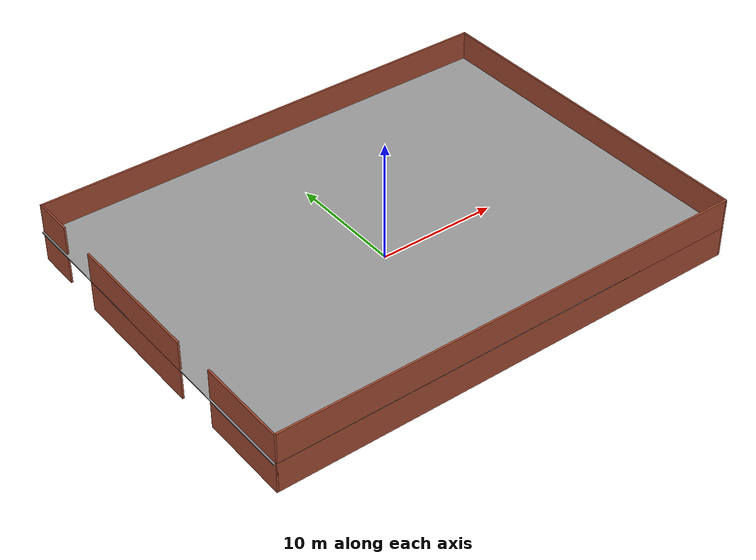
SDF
<?xml version='1.0'?>
<sdf version='1.6'>
  <model name='wallAndRoof'>
    <pose frame=''>-0.107713 0.045141 0 0 -0 0</pose>
    <link name='Floor_2'>
      <collision name='Floor_2_Collision'>
        <geometry>
          <box>
            <size>39.8884 29.75 0.1</size>
          </box>
        </geometry>
        <pose frame=''>0 0 0.05 0 -0 0</pose>
      </collision>
      <visual name='Floor_2_Visual'>
        <pose frame=''>0 0 0.05 0 -0 0</pose>
        <geometry>
          <box>
            <size>39.8884 29.75 0.1</size>
          </box>
        </geometry>
        <material>
          <script>
            <uri>file://media/materials/scripts/gazebo.material</uri>
            <name>Gazebo/Grey</name>
          </script>
          <ambient>0.32549 0.32549 0.32549 1</ambient>
        </material>
      </visual>
      <pose frame=''>-1e-06 0 2.5 0 -0 0</pose>
    </link>
    <link name='Wall_11'>
      <collision name='Wall_11_Collision'>
        <geometry>
          <box>
            <size>7.5 0.15 2.5</size>
          </box>
        </geometry>
        <pose frame=''>0 0 1.25 0 -0 0</pose>
      </collision>
      <visual name='Wall_11_Visual'>
        <pose frame=''>0 0 1.25 0 -0 0</pose>
        <geometry>
          <box>
            <size>7.5 0.15 2.5</size>
          </box>
        </geometry>
        <material>
          <script>
            <uri>file://media/materials/scripts/gazebo.material</uri>
            <name>Gazebo/Bricks</name>
          </script>
          <ambient>1 1 1 1</ambient>
        </material>
      </visual>
      <pose frame=''>-19.7308 -11.125 0 0 0 -1.5708</pose>
    </link>
    <link name='Wall_12'>
      <collision name='Wall_12_Collision'>
        <geometry>
          <box>
            <size>39.75 0.15 2.5</size>
          </box>
        </geometry>
        <pose frame=''>0 0 1.25 0 -0 0</pose>
      </collision>
      <visual name='Wall_12_Visual'>
        <pose frame=''>0 0 1.25 0 -0 0</pose>
        <geometry>
          <box>
            <size>39.75 0.15 2.5</size>
          </box>
        </geometry>
        <material>
          <script>
            <uri>file://media/materials/scripts/gazebo.material</uri>
            <name>Gazebo/Bricks</name>
          </script>
          <ambient>1 1 1 1</ambient>
        </material>
      </visual>
      <pose frame=''>0.069223 -14.8 0 0 -0 0</pose>
    </link>
    <link name='Wall_13'>
      <collision name='Wall_13_Collision'>
        <geometry>
          <box>
            <size>29.75 0.15 2.5</size>
          </box>
        </geometry>
        <pose frame=''>0 0 1.25 0 -0 0</pose>
      </collision>
      <visual name='Wall_13_Visual'>
        <pose frame=''>0 0 1.25 0 -0 0</pose>
        <geometry>
          <box>
            <size>29.75 0.15 2.5</size>
          </box>
        </geometry>
        <material>
          <script>
            <uri>file://media/materials/scripts/gazebo.material</uri>
            <name>Gazebo/Bricks</name>
          </script>
          <ambient>1 1 1 1</ambient>
        </material>
      </visual>
      <pose frame=''>19.8692 0 0 0 -0 1.5708</pose>
    </link>
    <link name='Wall_14'>
      <collision name='Wall_14_Collision'>
        <geometry>
          <box>
            <size>39.75 0.15 2.5</size>
          </box>
        </geometry>
        <pose frame=''>0 0 1.25 0 -0 0</pose>
      </collision>
      <visual name='Wall_14_Visual'>
        <pose frame=''>0 0 1.25 0 -0 0</pose>
        <geometry>
          <box>
            <size>39.75 0.15 2.5</size>
          </box>
        </geometry>
        <material>
          <script>
            <uri>file://media/materials/scripts/gazebo.material</uri>
            <name>Gazebo/Bricks</name>
          </script>
          <ambient>1 1 1 1</ambient>
        </material>
      </visual>
      <pose frame=''>0.069223 14.8 0 0 -0 3.14159</pose>
    </link>
    <link name='Wall_15'>
      <collision name='Wall_15_Collision'>
        <geometry>
          <box>
            <size>3.5 0.15 2.5</size>
          </box>
        </geometry>
        <pose frame=''>0 0 1.25 0 -0 0</pose>
      </collision>
      <visual name='Wall_15_Visual'>
        <pose frame=''>0 0 1.25 0 -0 0</pose>
        <geometry>
          <box>
            <size>3.5 0.15 2.5</size>
          </box>
        </geometry>
        <material>
          <script>
            <uri>file://media/materials/scripts/gazebo.material</uri>
            <name>Gazebo/Bricks</name>
          </script>
          <ambient>1 1 1 1</ambient>
        </material>
      </visual>
      <pose frame=''>-19.7308 13.125 0 0 0 -1.5708</pose>
    </link>
    <link name='Wall_17'>
      <collision name='Wall_17_Collision'>
        <geometry>
          <box>
            <size>11.75 0.15 2.5</size>
          </box>
        </geometry>
        <pose frame=''>0 0 1.25 0 -0 0</pose>
      </collision>
      <visual name='Wall_17_Visual'>
        <pose frame=''>0 0 1.25 0 -0 0</pose>
        <geometry>
          <box>
            <size>11.75 0.15 2.5</size>
          </box>
        </geometry>
        <material>
          <script>
            <uri>file://media/materials/scripts/gazebo.material</uri>
            <name>Gazebo/Bricks</name>
          </script>
          <ambient>1 1 1 1</ambient>
        </material>
      </visual>
      <pose frame=''>-19.8692 1.90922 0 0 0 -1.5708</pose>
    </link>
    <link name='Wall_31'>
      <collision name='Wall_31_Collision'>
        <geometry>
          <box>
            <size>7.5 0.15 2.5</size>
          </box>
        </geometry>
        <pose frame=''>0 0 1.25 0 -0 0</pose>
      </collision>
      <visual name='Wall_31_Visual'>
        <pose frame=''>0 0 1.25 0 -0 0</pose>
        <geometry>
          <box>
            <size>7.5 0.15 2.5</size>
          </box>
        </geometry>
        <material>
          <script>
            <uri>file://media/materials/scripts/gazebo.material</uri>
            <name>Gazebo/Bricks</name>
          </script>
          <ambient>1 1 1 1</ambient>
        </material>
      </visual>
      <pose frame=''>-19.7308 -11.125 2.5 0 0 -1.5708</pose>
    </link>
    <link name='Wall_32'>
      <collision name='Wall_32_Collision'>
        <geometry>
          <box>
            <size>39.75 0.15 2.5</size>
          </box>
        </geometry>
        <pose frame=''>0 0 1.25 0 -0 0</pose>
      </collision>
      <visual name='Wall_32_Visual'>
        <pose frame=''>0 0 1.25 0 -0 0</pose>
        <geometry>
          <box>
            <size>39.75 0.15 2.5</size>
          </box>
        </geometry>
        <material>
          <script>
            <uri>file://media/materials/scripts/gazebo.material</uri>
            <name>Gazebo/Bricks</name>
          </script>
          <ambient>1 1 1 1</ambient>
        </material>
      </visual>
      <pose frame=''>0.069223 -14.8 2.5 0 -0 0</pose>
    </link>
    <link name='Wall_33'>
      <collision name='Wall_33_Collision'>
        <geometry>
          <box>
            <size>29.75 0.15 2.5</size>
          </box>
        </geometry>
        <pose frame=''>0 0 1.25 0 -0 0</pose>
      </collision>
      <visual name='Wall_33_Visual'>
        <pose frame=''>0 0 1.25 0 -0 0</pose>
        <geometry>
          <box>
            <size>29.75 0.15 2.5</size>
          </box>
        </geometry>
        <material>
          <script>
            <uri>file://media/materials/scripts/gazebo.material</uri>
            <name>Gazebo/Bricks</name>
          </script>
          <ambient>1 1 1 1</ambient>
        </material>
      </visual>
      <pose frame=''>19.8692 0 2.5 0 -0 1.5708</pose>
    </link>
    <link name='Wall_34'>
      <collision name='Wall_34_Collision'>
        <geometry>
          <box>
            <size>39.75 0.15 2.5</size>
          </box>
        </geometry>
        <pose frame=''>0 0 1.25 0 -0 0</pose>
      </collision>
      <visual name='Wall_34_Visual'>
        <pose frame=''>0 0 1.25 0 -0 0</pose>
        <geometry>
          <box>
            <size>39.75 0.15 2.5</size>
          </box>
        </geometry>
        <material>
          <script>
            <uri>file://media/materials/scripts/gazebo.material</uri>
            <name>Gazebo/Bricks</name>
          </script>
          <ambient>1 1 1 1</ambient>
        </material>
      </visual>
      <pose frame=''>0.069223 14.8 2.5 0 -0 3.14159</pose>
    </link>
    <link name='Wall_35'>
      <collision name='Wall_35_Collision'>
        <geometry>
          <box>
            <size>3.5 0.15 2.5</size>
          </box>
        </geometry>
        <pose frame=''>0 0 1.25 0 -0 0</pose>
      </collision>
      <visual name='Wall_35_Visual'>
        <pose frame=''>0 0 1.25 0 -0 0</pose>
        <geometry>
          <box>
            <size>3.5 0.15 2.5</size>
          </box>
        </geometry>
        <material>
          <script>
            <uri>file://media/materials/scripts/gazebo.material</uri>
            <name>Gazebo/Bricks</name>
          </script>
          <ambient>1 1 1 1</ambient>
        </material>
      </visual>
      <pose frame=''>-19.7308 13.125 2.5 0 0 -1.5708</pose>
    </link>
    <link name='Wall_36'>
      <collision name='Wall_36_Collision'>
        <geometry>
          <box>
            <size>11.75 0.15 2.5</size>
          </box>
        </geometry>
        <pose frame=''>0 0 1.25 0 -0 0</pose>
      </collision>
      <visual name='Wall_36_Visual'>
        <pose frame=''>0 0 1.25 0 -0 0</pose>
        <geometry>
          <box>
            <size>11.75 0.15 2.5</size>
          </box>
        </geometry>
        <material>
          <script>
            <uri>file://media/materials/scripts/gazebo.material</uri>
            <name>Gazebo/Bricks</name>
          </script>
          <ambient>1 1 1 1</ambient>
        </material>
      </visual>
      <pose frame=''>-19.8692 1.90922 2.5 0 0 -1.5708</pose>
    </link>
    <static>1</static>
  </model>
</sdf>
